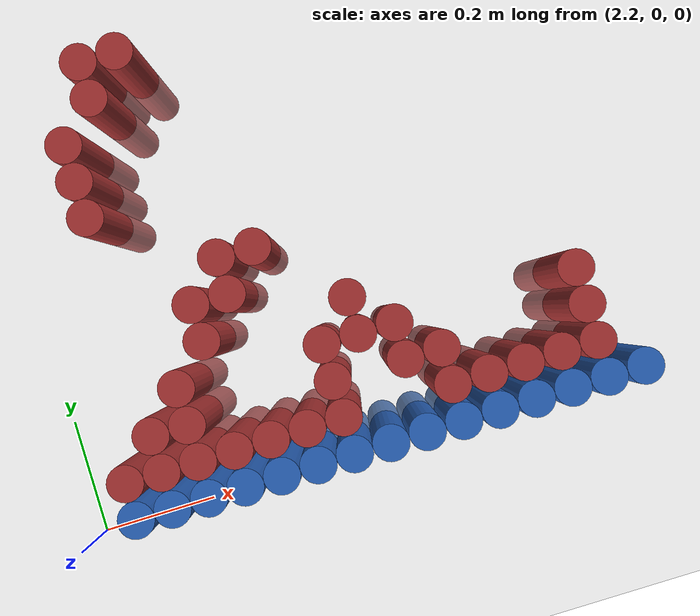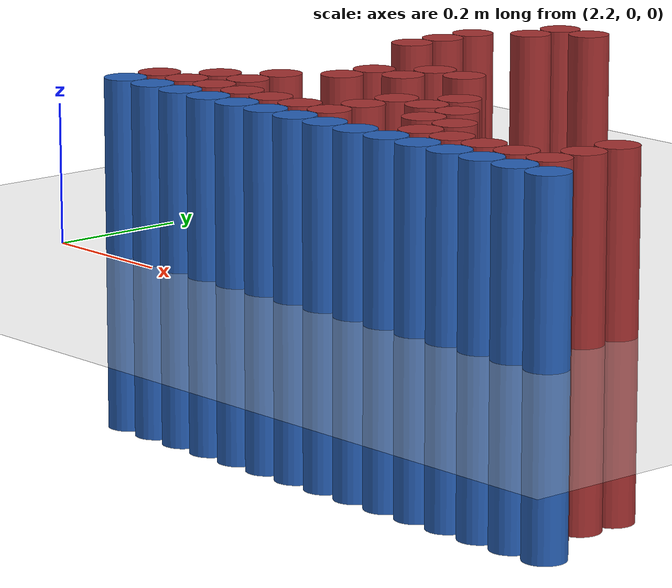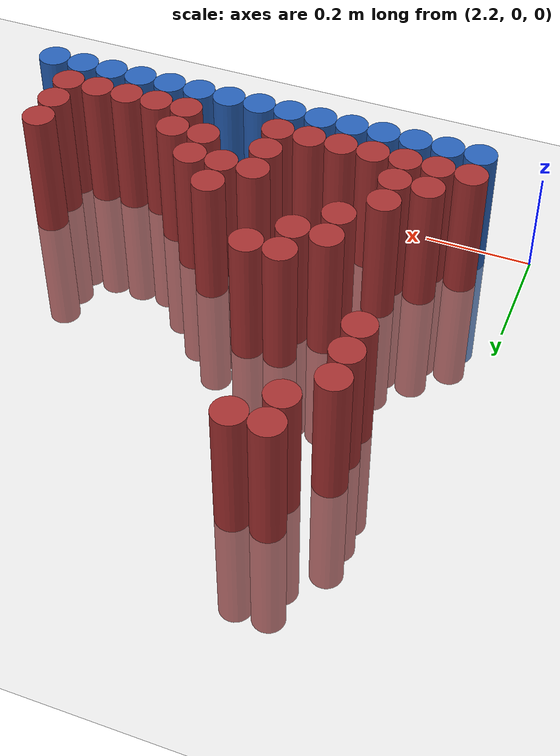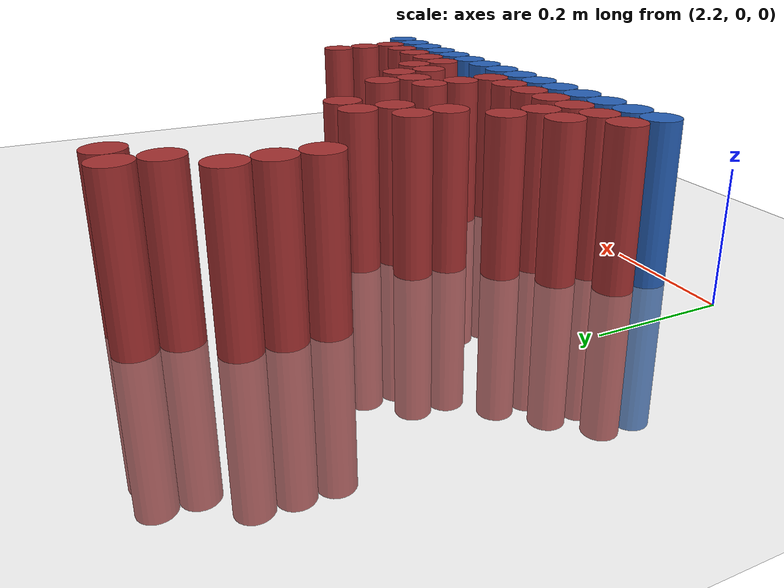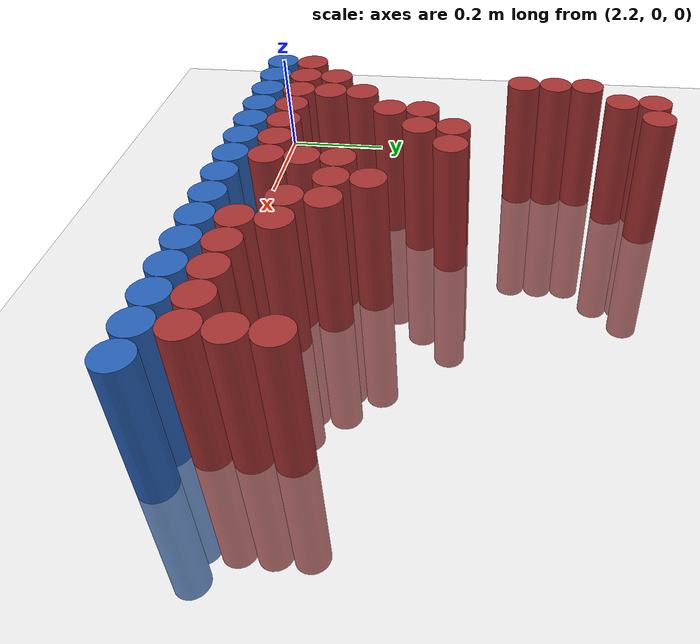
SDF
<sdf version="1.6">
 <world name="default">
  <model name="ground_plane">
   <static>1</static>
   <link name="link">
    <collision name="collision">
     <geometry><plane><normal>0 0 1</normal><size>100 100</size></plane></geometry>
     <surface><friction><ode><mu>100</mu><mu2>50</mu2></ode></friction></surface>
    </collision>
    <visual name="visual">
     <cast_shadows>0</cast_shadows>
     <geometry><plane><normal>0 0 1</normal><size>100 100</size></plane></geometry>
     <material>
      <script><uri>file://media/materials/scripts/gazebo.material</uri><name>Gazebo/Grey</name></script>
     </material>
    </visual>
   </link>
  </model>
  <model name="unit_cylinder_219">
   <static>1</static>
   <pose>2.430000 0.750000 0.000000 0.000000 0.000000 0.000000</pose>
   <link name="link">
    <inertial>
     <mass>1</mass>
     <inertia><ixx>0.145833</ixx><ixy>0</ixy><ixz>0</ixz><iyy>0.145833</iyy><iyz>0</iyz><izz>0.125</izz></inertia>
    </inertial>
    <collision name="collision">
     <geometry><cylinder><radius>0.030000</radius><length>0.5</length></cylinder></geometry>
    </collision>
    <visual name="visual">
     <geometry><cylinder><radius>0.030000</radius><length>0.5</length></cylinder></geometry>
     <material>
      <ambient>0.648000 0.192000 0.192000 1</ambient>
      <diffuse>0.648000 0.192000 0.192000 1</diffuse>
     </material>
     <material>
      <script><name>Gazebo/Grey</name><uri>file://media/materials/scripts/gazebo.material</uri></script>
     </material>
    </visual>
   </link>
  </model>
  <model name="unit_cylinder_220">
   <static>1</static>
   <pose>2.490000 0.750000 0.000000 0.000000 0.000000 0.000000</pose>
   <link name="link">
    <inertial>
     <mass>1</mass>
     <inertia><ixx>0.145833</ixx><ixy>0</ixy><ixz>0</ixz><iyy>0.145833</iyy><iyz>0</iyz><izz>0.125</izz></inertia>
    </inertial>
    <collision name="collision">
     <geometry><cylinder><radius>0.030000</radius><length>0.5</length></cylinder></geometry>
    </collision>
    <visual name="visual">
     <geometry><cylinder><radius>0.030000</radius><length>0.5</length></cylinder></geometry>
     <material>
      <ambient>0.648000 0.192000 0.192000 1</ambient>
      <diffuse>0.648000 0.192000 0.192000 1</diffuse>
     </material>
     <material>
      <script><name>Gazebo/Grey</name><uri>file://media/materials/scripts/gazebo.material</uri></script>
     </material>
    </visual>
   </link>
  </model>
  <model name="unit_cylinder_228">
   <static>1</static>
   <pose>2.430000 0.690000 0.000000 0.000000 0.000000 0.000000</pose>
   <link name="link">
    <inertial>
     <mass>1</mass>
     <inertia><ixx>0.145833</ixx><ixy>0</ixy><ixz>0</ixz><iyy>0.145833</iyy><iyz>0</iyz><izz>0.125</izz></inertia>
    </inertial>
    <collision name="collision">
     <geometry><cylinder><radius>0.030000</radius><length>0.5</length></cylinder></geometry>
    </collision>
    <visual name="visual">
     <geometry><cylinder><radius>0.030000</radius><length>0.5</length></cylinder></geometry>
     <material>
      <ambient>0.648000 0.192000 0.192000 1</ambient>
      <diffuse>0.648000 0.192000 0.192000 1</diffuse>
     </material>
     <material>
      <script><name>Gazebo/Grey</name><uri>file://media/materials/scripts/gazebo.material</uri></script>
     </material>
    </visual>
   </link>
  </model>
  <model name="unit_cylinder_234">
   <static>1</static>
   <pose>2.370000 0.630000 0.000000 0.000000 0.000000 0.000000</pose>
   <link name="link">
    <inertial>
     <mass>1</mass>
     <inertia><ixx>0.145833</ixx><ixy>0</ixy><ixz>0</ixz><iyy>0.145833</iyy><iyz>0</iyz><izz>0.125</izz></inertia>
    </inertial>
    <collision name="collision">
     <geometry><cylinder><radius>0.030000</radius><length>0.5</length></cylinder></geometry>
    </collision>
    <visual name="visual">
     <geometry><cylinder><radius>0.030000</radius><length>0.5</length></cylinder></geometry>
     <material>
      <ambient>0.648000 0.192000 0.192000 1</ambient>
      <diffuse>0.648000 0.192000 0.192000 1</diffuse>
     </material>
     <material>
      <script><name>Gazebo/Grey</name><uri>file://media/materials/scripts/gazebo.material</uri></script>
     </material>
    </visual>
   </link>
  </model>
  <model name="unit_cylinder_238">
   <static>1</static>
   <pose>2.370000 0.570000 0.000000 0.000000 0.000000 0.000000</pose>
   <link name="link">
    <inertial>
     <mass>1</mass>
     <inertia><ixx>0.145833</ixx><ixy>0</ixy><ixz>0</ixz><iyy>0.145833</iyy><iyz>0</iyz><izz>0.125</izz></inertia>
    </inertial>
    <collision name="collision">
     <geometry><cylinder><radius>0.030000</radius><length>0.5</length></cylinder></geometry>
    </collision>
    <visual name="visual">
     <geometry><cylinder><radius>0.030000</radius><length>0.5</length></cylinder></geometry>
     <material>
      <ambient>0.648000 0.192000 0.192000 1</ambient>
      <diffuse>0.648000 0.192000 0.192000 1</diffuse>
     </material>
     <material>
      <script><name>Gazebo/Grey</name><uri>file://media/materials/scripts/gazebo.material</uri></script>
     </material>
    </visual>
   </link>
  </model>
  <model name="unit_cylinder_243">
   <static>1</static>
   <pose>2.370000 0.510000 0.000000 0.000000 0.000000 0.000000</pose>
   <link name="link">
    <inertial>
     <mass>1</mass>
     <inertia><ixx>0.145833</ixx><ixy>0</ixy><ixz>0</ixz><iyy>0.145833</iyy><iyz>0</iyz><izz>0.125</izz></inertia>
    </inertial>
    <collision name="collision">
     <geometry><cylinder><radius>0.030000</radius><length>0.5</length></cylinder></geometry>
    </collision>
    <visual name="visual">
     <geometry><cylinder><radius>0.030000</radius><length>0.5</length></cylinder></geometry>
     <material>
      <ambient>0.648000 0.192000 0.192000 1</ambient>
      <diffuse>0.648000 0.192000 0.192000 1</diffuse>
     </material>
     <material>
      <script><name>Gazebo/Grey</name><uri>file://media/materials/scripts/gazebo.material</uri></script>
     </material>
    </visual>
   </link>
  </model>
  <model name="unit_cylinder_259">
   <static>1</static>
   <pose>2.550000 0.390000 0.000000 0.000000 0.000000 0.000000</pose>
   <link name="link">
    <inertial>
     <mass>1</mass>
     <inertia><ixx>0.145833</ixx><ixy>0</ixy><ixz>0</ixz><iyy>0.145833</iyy><iyz>0</iyz><izz>0.125</izz></inertia>
    </inertial>
    <collision name="collision">
     <geometry><cylinder><radius>0.030000</radius><length>0.5</length></cylinder></geometry>
    </collision>
    <visual name="visual">
     <geometry><cylinder><radius>0.030000</radius><length>0.5</length></cylinder></geometry>
     <material>
      <ambient>0.648000 0.192000 0.192000 1</ambient>
      <diffuse>0.648000 0.192000 0.192000 1</diffuse>
     </material>
     <material>
      <script><name>Gazebo/Grey</name><uri>file://media/materials/scripts/gazebo.material</uri></script>
     </material>
    </visual>
   </link>
  </model>
  <model name="unit_cylinder_260">
   <static>1</static>
   <pose>2.610000 0.390000 0.000000 0.000000 0.000000 0.000000</pose>
   <link name="link">
    <inertial>
     <mass>1</mass>
     <inertia><ixx>0.145833</ixx><ixy>0</ixy><ixz>0</ixz><iyy>0.145833</iyy><iyz>0</iyz><izz>0.125</izz></inertia>
    </inertial>
    <collision name="collision">
     <geometry><cylinder><radius>0.030000</radius><length>0.5</length></cylinder></geometry>
    </collision>
    <visual name="visual">
     <geometry><cylinder><radius>0.030000</radius><length>0.5</length></cylinder></geometry>
     <material>
      <ambient>0.648000 0.192000 0.192000 1</ambient>
      <diffuse>0.648000 0.192000 0.192000 1</diffuse>
     </material>
     <material>
      <script><name>Gazebo/Grey</name><uri>file://media/materials/scripts/gazebo.material</uri></script>
     </material>
    </visual>
   </link>
  </model>
  <model name="unit_cylinder_266">
   <static>1</static>
   <pose>2.490000 0.330000 0.000000 0.000000 0.000000 0.000000</pose>
   <link name="link">
    <inertial>
     <mass>1</mass>
     <inertia><ixx>0.145833</ixx><ixy>0</ixy><ixz>0</ixz><iyy>0.145833</iyy><iyz>0</iyz><izz>0.125</izz></inertia>
    </inertial>
    <collision name="collision">
     <geometry><cylinder><radius>0.030000</radius><length>0.5</length></cylinder></geometry>
    </collision>
    <visual name="visual">
     <geometry><cylinder><radius>0.030000</radius><length>0.5</length></cylinder></geometry>
     <material>
      <ambient>0.648000 0.192000 0.192000 1</ambient>
      <diffuse>0.648000 0.192000 0.192000 1</diffuse>
     </material>
     <material>
      <script><name>Gazebo/Grey</name><uri>file://media/materials/scripts/gazebo.material</uri></script>
     </material>
    </visual>
   </link>
  </model>
  <model name="unit_cylinder_267">
   <static>1</static>
   <pose>2.550000 0.330000 0.000000 0.000000 0.000000 0.000000</pose>
   <link name="link">
    <inertial>
     <mass>1</mass>
     <inertia><ixx>0.145833</ixx><ixy>0</ixy><ixz>0</ixz><iyy>0.145833</iyy><iyz>0</iyz><izz>0.125</izz></inertia>
    </inertial>
    <collision name="collision">
     <geometry><cylinder><radius>0.030000</radius><length>0.5</length></cylinder></geometry>
    </collision>
    <visual name="visual">
     <geometry><cylinder><radius>0.030000</radius><length>0.5</length></cylinder></geometry>
     <material>
      <ambient>0.648000 0.192000 0.192000 1</ambient>
      <diffuse>0.648000 0.192000 0.192000 1</diffuse>
     </material>
     <material>
      <script><name>Gazebo/Grey</name><uri>file://media/materials/scripts/gazebo.material</uri></script>
     </material>
    </visual>
   </link>
  </model>
  <model name="unit_cylinder_274">
   <static>1</static>
   <pose>2.490000 0.270000 0.000000 0.000000 0.000000 0.000000</pose>
   <link name="link">
    <inertial>
     <mass>1</mass>
     <inertia><ixx>0.145833</ixx><ixy>0</ixy><ixz>0</ixz><iyy>0.145833</iyy><iyz>0</iyz><izz>0.125</izz></inertia>
    </inertial>
    <collision name="collision">
     <geometry><cylinder><radius>0.030000</radius><length>0.5</length></cylinder></geometry>
    </collision>
    <visual name="visual">
     <geometry><cylinder><radius>0.030000</radius><length>0.5</length></cylinder></geometry>
     <material>
      <ambient>0.648000 0.192000 0.192000 1</ambient>
      <diffuse>0.648000 0.192000 0.192000 1</diffuse>
     </material>
     <material>
      <script><name>Gazebo/Grey</name><uri>file://media/materials/scripts/gazebo.material</uri></script>
     </material>
    </visual>
   </link>
  </model>
  <model name="unit_cylinder_275">
   <static>1</static>
   <pose>2.730000 0.270000 0.000000 0.000000 0.000000 0.000000</pose>
   <link name="link">
    <inertial>
     <mass>1</mass>
     <inertia><ixx>0.145833</ixx><ixy>0</ixy><ixz>0</ixz><iyy>0.145833</iyy><iyz>0</iyz><izz>0.125</izz></inertia>
    </inertial>
    <collision name="collision">
     <geometry><cylinder><radius>0.030000</radius><length>0.5</length></cylinder></geometry>
    </collision>
    <visual name="visual">
     <geometry><cylinder><radius>0.030000</radius><length>0.5</length></cylinder></geometry>
     <material>
      <ambient>0.648000 0.192000 0.192000 1</ambient>
      <diffuse>0.648000 0.192000 0.192000 1</diffuse>
     </material>
     <material>
      <script><name>Gazebo/Grey</name><uri>file://media/materials/scripts/gazebo.material</uri></script>
     </material>
    </visual>
   </link>
  </model>
  <model name="unit_cylinder_283">
   <static>1</static>
   <pose>2.430000 0.210000 0.000000 0.000000 0.000000 0.000000</pose>
   <link name="link">
    <inertial>
     <mass>1</mass>
     <inertia><ixx>0.145833</ixx><ixy>0</ixy><ixz>0</ixz><iyy>0.145833</iyy><iyz>0</iyz><izz>0.125</izz></inertia>
    </inertial>
    <collision name="collision">
     <geometry><cylinder><radius>0.030000</radius><length>0.5</length></cylinder></geometry>
    </collision>
    <visual name="visual">
     <geometry><cylinder><radius>0.030000</radius><length>0.5</length></cylinder></geometry>
     <material>
      <ambient>0.648000 0.192000 0.192000 1</ambient>
      <diffuse>0.648000 0.192000 0.192000 1</diffuse>
     </material>
     <material>
      <script><name>Gazebo/Grey</name><uri>file://media/materials/scripts/gazebo.material</uri></script>
     </material>
    </visual>
   </link>
  </model>
  <model name="unit_cylinder_284">
   <static>1</static>
   <pose>2.670000 0.210000 0.000000 0.000000 0.000000 0.000000</pose>
   <link name="link">
    <inertial>
     <mass>1</mass>
     <inertia><ixx>0.145833</ixx><ixy>0</ixy><ixz>0</ixz><iyy>0.145833</iyy><iyz>0</iyz><izz>0.125</izz></inertia>
    </inertial>
    <collision name="collision">
     <geometry><cylinder><radius>0.030000</radius><length>0.5</length></cylinder></geometry>
    </collision>
    <visual name="visual">
     <geometry><cylinder><radius>0.030000</radius><length>0.5</length></cylinder></geometry>
     <material>
      <ambient>0.648000 0.192000 0.192000 1</ambient>
      <diffuse>0.648000 0.192000 0.192000 1</diffuse>
     </material>
     <material>
      <script><name>Gazebo/Grey</name><uri>file://media/materials/scripts/gazebo.material</uri></script>
     </material>
    </visual>
   </link>
  </model>
  <model name="unit_cylinder_285">
   <static>1</static>
   <pose>2.730000 0.210000 0.000000 0.000000 0.000000 0.000000</pose>
   <link name="link">
    <inertial>
     <mass>1</mass>
     <inertia><ixx>0.145833</ixx><ixy>0</ixy><ixz>0</ixz><iyy>0.145833</iyy><iyz>0</iyz><izz>0.125</izz></inertia>
    </inertial>
    <collision name="collision">
     <geometry><cylinder><radius>0.030000</radius><length>0.5</length></cylinder></geometry>
    </collision>
    <visual name="visual">
     <geometry><cylinder><radius>0.030000</radius><length>0.5</length></cylinder></geometry>
     <material>
      <ambient>0.648000 0.192000 0.192000 1</ambient>
      <diffuse>0.648000 0.192000 0.192000 1</diffuse>
     </material>
     <material>
      <script><name>Gazebo/Grey</name><uri>file://media/materials/scripts/gazebo.material</uri></script>
     </material>
    </visual>
   </link>
  </model>
  <model name="unit_cylinder_286">
   <static>1</static>
   <pose>2.790000 0.210000 0.000000 0.000000 0.000000 0.000000</pose>
   <link name="link">
    <inertial>
     <mass>1</mass>
     <inertia><ixx>0.145833</ixx><ixy>0</ixy><ixz>0</ixz><iyy>0.145833</iyy><iyz>0</iyz><izz>0.125</izz></inertia>
    </inertial>
    <collision name="collision">
     <geometry><cylinder><radius>0.030000</radius><length>0.5</length></cylinder></geometry>
    </collision>
    <visual name="visual">
     <geometry><cylinder><radius>0.030000</radius><length>0.5</length></cylinder></geometry>
     <material>
      <ambient>0.648000 0.192000 0.192000 1</ambient>
      <diffuse>0.648000 0.192000 0.192000 1</diffuse>
     </material>
     <material>
      <script><name>Gazebo/Grey</name><uri>file://media/materials/scripts/gazebo.material</uri></script>
     </material>
    </visual>
   </link>
  </model>
  <model name="unit_cylinder_287">
   <static>1</static>
   <pose>3.090000 0.210000 0.000000 0.000000 0.000000 0.000000</pose>
   <link name="link">
    <inertial>
     <mass>1</mass>
     <inertia><ixx>0.145833</ixx><ixy>0</ixy><ixz>0</ixz><iyy>0.145833</iyy><iyz>0</iyz><izz>0.125</izz></inertia>
    </inertial>
    <collision name="collision">
     <geometry><cylinder><radius>0.030000</radius><length>0.5</length></cylinder></geometry>
    </collision>
    <visual name="visual">
     <geometry><cylinder><radius>0.030000</radius><length>0.5</length></cylinder></geometry>
     <material>
      <ambient>0.648000 0.192000 0.192000 1</ambient>
      <diffuse>0.648000 0.192000 0.192000 1</diffuse>
     </material>
     <material>
      <script><name>Gazebo/Grey</name><uri>file://media/materials/scripts/gazebo.material</uri></script>
     </material>
    </visual>
   </link>
  </model>
  <model name="unit_cylinder_292">
   <static>1</static>
   <pose>2.370000 0.150000 0.000000 0.000000 0.000000 0.000000</pose>
   <link name="link">
    <inertial>
     <mass>1</mass>
     <inertia><ixx>0.145833</ixx><ixy>0</ixy><ixz>0</ixz><iyy>0.145833</iyy><iyz>0</iyz><izz>0.125</izz></inertia>
    </inertial>
    <collision name="collision">
     <geometry><cylinder><radius>0.030000</radius><length>0.5</length></cylinder></geometry>
    </collision>
    <visual name="visual">
     <geometry><cylinder><radius>0.030000</radius><length>0.5</length></cylinder></geometry>
     <material>
      <ambient>0.648000 0.192000 0.192000 1</ambient>
      <diffuse>0.648000 0.192000 0.192000 1</diffuse>
     </material>
     <material>
      <script><name>Gazebo/Grey</name><uri>file://media/materials/scripts/gazebo.material</uri></script>
     </material>
    </visual>
   </link>
  </model>
  <model name="unit_cylinder_293">
   <static>1</static>
   <pose>2.430000 0.150000 0.000000 0.000000 0.000000 0.000000</pose>
   <link name="link">
    <inertial>
     <mass>1</mass>
     <inertia><ixx>0.145833</ixx><ixy>0</ixy><ixz>0</ixz><iyy>0.145833</iyy><iyz>0</iyz><izz>0.125</izz></inertia>
    </inertial>
    <collision name="collision">
     <geometry><cylinder><radius>0.030000</radius><length>0.5</length></cylinder></geometry>
    </collision>
    <visual name="visual">
     <geometry><cylinder><radius>0.030000</radius><length>0.5</length></cylinder></geometry>
     <material>
      <ambient>0.648000 0.192000 0.192000 1</ambient>
      <diffuse>0.648000 0.192000 0.192000 1</diffuse>
     </material>
     <material>
      <script><name>Gazebo/Grey</name><uri>file://media/materials/scripts/gazebo.material</uri></script>
     </material>
    </visual>
   </link>
  </model>
  <model name="unit_cylinder_294">
   <static>1</static>
   <pose>2.670000 0.150000 0.000000 0.000000 0.000000 0.000000</pose>
   <link name="link">
    <inertial>
     <mass>1</mass>
     <inertia><ixx>0.145833</ixx><ixy>0</ixy><ixz>0</ixz><iyy>0.145833</iyy><iyz>0</iyz><izz>0.125</izz></inertia>
    </inertial>
    <collision name="collision">
     <geometry><cylinder><radius>0.030000</radius><length>0.5</length></cylinder></geometry>
    </collision>
    <visual name="visual">
     <geometry><cylinder><radius>0.030000</radius><length>0.5</length></cylinder></geometry>
     <material>
      <ambient>0.648000 0.192000 0.192000 1</ambient>
      <diffuse>0.648000 0.192000 0.192000 1</diffuse>
     </material>
     <material>
      <script><name>Gazebo/Grey</name><uri>file://media/materials/scripts/gazebo.material</uri></script>
     </material>
    </visual>
   </link>
  </model>
  <model name="unit_cylinder_295">
   <static>1</static>
   <pose>2.790000 0.150000 0.000000 0.000000 0.000000 0.000000</pose>
   <link name="link">
    <inertial>
     <mass>1</mass>
     <inertia><ixx>0.145833</ixx><ixy>0</ixy><ixz>0</ixz><iyy>0.145833</iyy><iyz>0</iyz><izz>0.125</izz></inertia>
    </inertial>
    <collision name="collision">
     <geometry><cylinder><radius>0.030000</radius><length>0.5</length></cylinder></geometry>
    </collision>
    <visual name="visual">
     <geometry><cylinder><radius>0.030000</radius><length>0.5</length></cylinder></geometry>
     <material>
      <ambient>0.648000 0.192000 0.192000 1</ambient>
      <diffuse>0.648000 0.192000 0.192000 1</diffuse>
     </material>
     <material>
      <script><name>Gazebo/Grey</name><uri>file://media/materials/scripts/gazebo.material</uri></script>
     </material>
    </visual>
   </link>
  </model>
  <model name="unit_cylinder_296">
   <static>1</static>
   <pose>2.850000 0.150000 0.000000 0.000000 0.000000 0.000000</pose>
   <link name="link">
    <inertial>
     <mass>1</mass>
     <inertia><ixx>0.145833</ixx><ixy>0</ixy><ixz>0</ixz><iyy>0.145833</iyy><iyz>0</iyz><izz>0.125</izz></inertia>
    </inertial>
    <collision name="collision">
     <geometry><cylinder><radius>0.030000</radius><length>0.5</length></cylinder></geometry>
    </collision>
    <visual name="visual">
     <geometry><cylinder><radius>0.030000</radius><length>0.5</length></cylinder></geometry>
     <material>
      <ambient>0.648000 0.192000 0.192000 1</ambient>
      <diffuse>0.648000 0.192000 0.192000 1</diffuse>
     </material>
     <material>
      <script><name>Gazebo/Grey</name><uri>file://media/materials/scripts/gazebo.material</uri></script>
     </material>
    </visual>
   </link>
  </model>
  <model name="unit_cylinder_297">
   <static>1</static>
   <pose>3.090000 0.150000 0.000000 0.000000 0.000000 0.000000</pose>
   <link name="link">
    <inertial>
     <mass>1</mass>
     <inertia><ixx>0.145833</ixx><ixy>0</ixy><ixz>0</ixz><iyy>0.145833</iyy><iyz>0</iyz><izz>0.125</izz></inertia>
    </inertial>
    <collision name="collision">
     <geometry><cylinder><radius>0.030000</radius><length>0.5</length></cylinder></geometry>
    </collision>
    <visual name="visual">
     <geometry><cylinder><radius>0.030000</radius><length>0.5</length></cylinder></geometry>
     <material>
      <ambient>0.648000 0.192000 0.192000 1</ambient>
      <diffuse>0.648000 0.192000 0.192000 1</diffuse>
     </material>
     <material>
      <script><name>Gazebo/Grey</name><uri>file://media/materials/scripts/gazebo.material</uri></script>
     </material>
    </visual>
   </link>
  </model>
  <model name="unit_cylinder_303">
   <static>1</static>
   <pose>2.310000 0.090000 0.000000 0.000000 0.000000 0.000000</pose>
   <link name="link">
    <inertial>
     <mass>1</mass>
     <inertia><ixx>0.145833</ixx><ixy>0</ixy><ixz>0</ixz><iyy>0.145833</iyy><iyz>0</iyz><izz>0.125</izz></inertia>
    </inertial>
    <collision name="collision">
     <geometry><cylinder><radius>0.030000</radius><length>0.5</length></cylinder></geometry>
    </collision>
    <visual name="visual">
     <geometry><cylinder><radius>0.030000</radius><length>0.5</length></cylinder></geometry>
     <material>
      <ambient>0.648000 0.192000 0.192000 1</ambient>
      <diffuse>0.648000 0.192000 0.192000 1</diffuse>
     </material>
     <material>
      <script><name>Gazebo/Grey</name><uri>file://media/materials/scripts/gazebo.material</uri></script>
     </material>
    </visual>
   </link>
  </model>
  <model name="unit_cylinder_304">
   <static>1</static>
   <pose>2.370000 0.090000 0.000000 0.000000 0.000000 0.000000</pose>
   <link name="link">
    <inertial>
     <mass>1</mass>
     <inertia><ixx>0.145833</ixx><ixy>0</ixy><ixz>0</ixz><iyy>0.145833</iyy><iyz>0</iyz><izz>0.125</izz></inertia>
    </inertial>
    <collision name="collision">
     <geometry><cylinder><radius>0.030000</radius><length>0.5</length></cylinder></geometry>
    </collision>
    <visual name="visual">
     <geometry><cylinder><radius>0.030000</radius><length>0.5</length></cylinder></geometry>
     <material>
      <ambient>0.648000 0.192000 0.192000 1</ambient>
      <diffuse>0.648000 0.192000 0.192000 1</diffuse>
     </material>
     <material>
      <script><name>Gazebo/Grey</name><uri>file://media/materials/scripts/gazebo.material</uri></script>
     </material>
    </visual>
   </link>
  </model>
  <model name="unit_cylinder_305">
   <static>1</static>
   <pose>2.430000 0.090000 0.000000 0.000000 0.000000 0.000000</pose>
   <link name="link">
    <inertial>
     <mass>1</mass>
     <inertia><ixx>0.145833</ixx><ixy>0</ixy><ixz>0</ixz><iyy>0.145833</iyy><iyz>0</iyz><izz>0.125</izz></inertia>
    </inertial>
    <collision name="collision">
     <geometry><cylinder><radius>0.030000</radius><length>0.5</length></cylinder></geometry>
    </collision>
    <visual name="visual">
     <geometry><cylinder><radius>0.030000</radius><length>0.5</length></cylinder></geometry>
     <material>
      <ambient>0.648000 0.192000 0.192000 1</ambient>
      <diffuse>0.648000 0.192000 0.192000 1</diffuse>
     </material>
     <material>
      <script><name>Gazebo/Grey</name><uri>file://media/materials/scripts/gazebo.material</uri></script>
     </material>
    </visual>
   </link>
  </model>
  <model name="unit_cylinder_306">
   <static>1</static>
   <pose>2.490000 0.090000 0.000000 0.000000 0.000000 0.000000</pose>
   <link name="link">
    <inertial>
     <mass>1</mass>
     <inertia><ixx>0.145833</ixx><ixy>0</ixy><ixz>0</ixz><iyy>0.145833</iyy><iyz>0</iyz><izz>0.125</izz></inertia>
    </inertial>
    <collision name="collision">
     <geometry><cylinder><radius>0.030000</radius><length>0.5</length></cylinder></geometry>
    </collision>
    <visual name="visual">
     <geometry><cylinder><radius>0.030000</radius><length>0.5</length></cylinder></geometry>
     <material>
      <ambient>0.648000 0.192000 0.192000 1</ambient>
      <diffuse>0.648000 0.192000 0.192000 1</diffuse>
     </material>
     <material>
      <script><name>Gazebo/Grey</name><uri>file://media/materials/scripts/gazebo.material</uri></script>
     </material>
    </visual>
   </link>
  </model>
  <model name="unit_cylinder_307">
   <static>1</static>
   <pose>2.550000 0.090000 0.000000 0.000000 0.000000 0.000000</pose>
   <link name="link">
    <inertial>
     <mass>1</mass>
     <inertia><ixx>0.145833</ixx><ixy>0</ixy><ixz>0</ixz><iyy>0.145833</iyy><iyz>0</iyz><izz>0.125</izz></inertia>
    </inertial>
    <collision name="collision">
     <geometry><cylinder><radius>0.030000</radius><length>0.5</length></cylinder></geometry>
    </collision>
    <visual name="visual">
     <geometry><cylinder><radius>0.030000</radius><length>0.5</length></cylinder></geometry>
     <material>
      <ambient>0.648000 0.192000 0.192000 1</ambient>
      <diffuse>0.648000 0.192000 0.192000 1</diffuse>
     </material>
     <material>
      <script><name>Gazebo/Grey</name><uri>file://media/materials/scripts/gazebo.material</uri></script>
     </material>
    </visual>
   </link>
  </model>
  <model name="unit_cylinder_308">
   <static>1</static>
   <pose>2.610000 0.090000 0.000000 0.000000 0.000000 0.000000</pose>
   <link name="link">
    <inertial>
     <mass>1</mass>
     <inertia><ixx>0.145833</ixx><ixy>0</ixy><ixz>0</ixz><iyy>0.145833</iyy><iyz>0</iyz><izz>0.125</izz></inertia>
    </inertial>
    <collision name="collision">
     <geometry><cylinder><radius>0.030000</radius><length>0.5</length></cylinder></geometry>
    </collision>
    <visual name="visual">
     <geometry><cylinder><radius>0.030000</radius><length>0.5</length></cylinder></geometry>
     <material>
      <ambient>0.648000 0.192000 0.192000 1</ambient>
      <diffuse>0.648000 0.192000 0.192000 1</diffuse>
     </material>
     <material>
      <script><name>Gazebo/Grey</name><uri>file://media/materials/scripts/gazebo.material</uri></script>
     </material>
    </visual>
   </link>
  </model>
  <model name="unit_cylinder_309">
   <static>1</static>
   <pose>2.670000 0.090000 0.000000 0.000000 0.000000 0.000000</pose>
   <link name="link">
    <inertial>
     <mass>1</mass>
     <inertia><ixx>0.145833</ixx><ixy>0</ixy><ixz>0</ixz><iyy>0.145833</iyy><iyz>0</iyz><izz>0.125</izz></inertia>
    </inertial>
    <collision name="collision">
     <geometry><cylinder><radius>0.030000</radius><length>0.5</length></cylinder></geometry>
    </collision>
    <visual name="visual">
     <geometry><cylinder><radius>0.030000</radius><length>0.5</length></cylinder></geometry>
     <material>
      <ambient>0.648000 0.192000 0.192000 1</ambient>
      <diffuse>0.648000 0.192000 0.192000 1</diffuse>
     </material>
     <material>
      <script><name>Gazebo/Grey</name><uri>file://media/materials/scripts/gazebo.material</uri></script>
     </material>
    </visual>
   </link>
  </model>
  <model name="unit_cylinder_310">
   <static>1</static>
   <pose>2.850000 0.090000 0.000000 0.000000 0.000000 0.000000</pose>
   <link name="link">
    <inertial>
     <mass>1</mass>
     <inertia><ixx>0.145833</ixx><ixy>0</ixy><ixz>0</ixz><iyy>0.145833</iyy><iyz>0</iyz><izz>0.125</izz></inertia>
    </inertial>
    <collision name="collision">
     <geometry><cylinder><radius>0.030000</radius><length>0.5</length></cylinder></geometry>
    </collision>
    <visual name="visual">
     <geometry><cylinder><radius>0.030000</radius><length>0.5</length></cylinder></geometry>
     <material>
      <ambient>0.648000 0.192000 0.192000 1</ambient>
      <diffuse>0.648000 0.192000 0.192000 1</diffuse>
     </material>
     <material>
      <script><name>Gazebo/Grey</name><uri>file://media/materials/scripts/gazebo.material</uri></script>
     </material>
    </visual>
   </link>
  </model>
  <model name="unit_cylinder_311">
   <static>1</static>
   <pose>2.910000 0.090000 0.000000 0.000000 0.000000 0.000000</pose>
   <link name="link">
    <inertial>
     <mass>1</mass>
     <inertia><ixx>0.145833</ixx><ixy>0</ixy><ixz>0</ixz><iyy>0.145833</iyy><iyz>0</iyz><izz>0.125</izz></inertia>
    </inertial>
    <collision name="collision">
     <geometry><cylinder><radius>0.030000</radius><length>0.5</length></cylinder></geometry>
    </collision>
    <visual name="visual">
     <geometry><cylinder><radius>0.030000</radius><length>0.5</length></cylinder></geometry>
     <material>
      <ambient>0.648000 0.192000 0.192000 1</ambient>
      <diffuse>0.648000 0.192000 0.192000 1</diffuse>
     </material>
     <material>
      <script><name>Gazebo/Grey</name><uri>file://media/materials/scripts/gazebo.material</uri></script>
     </material>
    </visual>
   </link>
  </model>
  <model name="unit_cylinder_312">
   <static>1</static>
   <pose>2.970000 0.090000 0.000000 0.000000 0.000000 0.000000</pose>
   <link name="link">
    <inertial>
     <mass>1</mass>
     <inertia><ixx>0.145833</ixx><ixy>0</ixy><ixz>0</ixz><iyy>0.145833</iyy><iyz>0</iyz><izz>0.125</izz></inertia>
    </inertial>
    <collision name="collision">
     <geometry><cylinder><radius>0.030000</radius><length>0.5</length></cylinder></geometry>
    </collision>
    <visual name="visual">
     <geometry><cylinder><radius>0.030000</radius><length>0.5</length></cylinder></geometry>
     <material>
      <ambient>0.648000 0.192000 0.192000 1</ambient>
      <diffuse>0.648000 0.192000 0.192000 1</diffuse>
     </material>
     <material>
      <script><name>Gazebo/Grey</name><uri>file://media/materials/scripts/gazebo.material</uri></script>
     </material>
    </visual>
   </link>
  </model>
  <model name="unit_cylinder_313">
   <static>1</static>
   <pose>3.030000 0.090000 0.000000 0.000000 0.000000 0.000000</pose>
   <link name="link">
    <inertial>
     <mass>1</mass>
     <inertia><ixx>0.145833</ixx><ixy>0</ixy><ixz>0</ixz><iyy>0.145833</iyy><iyz>0</iyz><izz>0.125</izz></inertia>
    </inertial>
    <collision name="collision">
     <geometry><cylinder><radius>0.030000</radius><length>0.5</length></cylinder></geometry>
    </collision>
    <visual name="visual">
     <geometry><cylinder><radius>0.030000</radius><length>0.5</length></cylinder></geometry>
     <material>
      <ambient>0.648000 0.192000 0.192000 1</ambient>
      <diffuse>0.648000 0.192000 0.192000 1</diffuse>
     </material>
     <material>
      <script><name>Gazebo/Grey</name><uri>file://media/materials/scripts/gazebo.material</uri></script>
     </material>
    </visual>
   </link>
  </model>
  <model name="unit_cylinder_314">
   <static>1</static>
   <pose>3.090000 0.090000 0.000000 0.000000 0.000000 0.000000</pose>
   <link name="link">
    <inertial>
     <mass>1</mass>
     <inertia><ixx>0.145833</ixx><ixy>0</ixy><ixz>0</ixz><iyy>0.145833</iyy><iyz>0</iyz><izz>0.125</izz></inertia>
    </inertial>
    <collision name="collision">
     <geometry><cylinder><radius>0.030000</radius><length>0.5</length></cylinder></geometry>
    </collision>
    <visual name="visual">
     <geometry><cylinder><radius>0.030000</radius><length>0.5</length></cylinder></geometry>
     <material>
      <ambient>0.648000 0.192000 0.192000 1</ambient>
      <diffuse>0.648000 0.192000 0.192000 1</diffuse>
     </material>
     <material>
      <script><name>Gazebo/Grey</name><uri>file://media/materials/scripts/gazebo.material</uri></script>
     </material>
    </visual>
   </link>
  </model>
  <model name="unit_cylinder_325">
   <static>1</static>
   <pose>2.310000 0.030000 0.000000 0.000000 0.000000 0.000000</pose>
   <link name="link">
    <inertial>
     <mass>1</mass>
     <inertia><ixx>0.145833</ixx><ixy>0</ixy><ixz>0</ixz><iyy>0.145833</iyy><iyz>0</iyz><izz>0.125</izz></inertia>
    </inertial>
    <collision name="collision">
     <geometry><cylinder><radius>0.030000</radius><length>0.5</length></cylinder></geometry>
    </collision>
    <visual name="visual">
     <geometry><cylinder><radius>0.030000</radius><length>0.5</length></cylinder></geometry>
     <material>
      <ambient>0.152000 0.379000 0.720000 1</ambient>
      <diffuse>0.152000 0.379000 0.720000 1</diffuse>
     </material>
     <material>
      <script><name>Gazebo/Grey</name><uri>file://media/materials/scripts/gazebo.material</uri></script>
     </material>
    </visual>
   </link>
  </model>
  <model name="unit_cylinder_326">
   <static>1</static>
   <pose>2.370000 0.030000 0.000000 0.000000 0.000000 0.000000</pose>
   <link name="link">
    <inertial>
     <mass>1</mass>
     <inertia><ixx>0.145833</ixx><ixy>0</ixy><ixz>0</ixz><iyy>0.145833</iyy><iyz>0</iyz><izz>0.125</izz></inertia>
    </inertial>
    <collision name="collision">
     <geometry><cylinder><radius>0.030000</radius><length>0.5</length></cylinder></geometry>
    </collision>
    <visual name="visual">
     <geometry><cylinder><radius>0.030000</radius><length>0.5</length></cylinder></geometry>
     <material>
      <ambient>0.152000 0.379000 0.720000 1</ambient>
      <diffuse>0.152000 0.379000 0.720000 1</diffuse>
     </material>
     <material>
      <script><name>Gazebo/Grey</name><uri>file://media/materials/scripts/gazebo.material</uri></script>
     </material>
    </visual>
   </link>
  </model>
  <model name="unit_cylinder_327">
   <static>1</static>
   <pose>2.430000 0.030000 0.000000 0.000000 0.000000 0.000000</pose>
   <link name="link">
    <inertial>
     <mass>1</mass>
     <inertia><ixx>0.145833</ixx><ixy>0</ixy><ixz>0</ixz><iyy>0.145833</iyy><iyz>0</iyz><izz>0.125</izz></inertia>
    </inertial>
    <collision name="collision">
     <geometry><cylinder><radius>0.030000</radius><length>0.5</length></cylinder></geometry>
    </collision>
    <visual name="visual">
     <geometry><cylinder><radius>0.030000</radius><length>0.5</length></cylinder></geometry>
     <material>
      <ambient>0.152000 0.379000 0.720000 1</ambient>
      <diffuse>0.152000 0.379000 0.720000 1</diffuse>
     </material>
     <material>
      <script><name>Gazebo/Grey</name><uri>file://media/materials/scripts/gazebo.material</uri></script>
     </material>
    </visual>
   </link>
  </model>
  <model name="unit_cylinder_328">
   <static>1</static>
   <pose>2.490000 0.030000 0.000000 0.000000 0.000000 0.000000</pose>
   <link name="link">
    <inertial>
     <mass>1</mass>
     <inertia><ixx>0.145833</ixx><ixy>0</ixy><ixz>0</ixz><iyy>0.145833</iyy><iyz>0</iyz><izz>0.125</izz></inertia>
    </inertial>
    <collision name="collision">
     <geometry><cylinder><radius>0.030000</radius><length>0.5</length></cylinder></geometry>
    </collision>
    <visual name="visual">
     <geometry><cylinder><radius>0.030000</radius><length>0.5</length></cylinder></geometry>
     <material>
      <ambient>0.152000 0.379000 0.720000 1</ambient>
      <diffuse>0.152000 0.379000 0.720000 1</diffuse>
     </material>
     <material>
      <script><name>Gazebo/Grey</name><uri>file://media/materials/scripts/gazebo.material</uri></script>
     </material>
    </visual>
   </link>
  </model>
  <model name="unit_cylinder_329">
   <static>1</static>
   <pose>2.550000 0.030000 0.000000 0.000000 0.000000 0.000000</pose>
   <link name="link">
    <inertial>
     <mass>1</mass>
     <inertia><ixx>0.145833</ixx><ixy>0</ixy><ixz>0</ixz><iyy>0.145833</iyy><iyz>0</iyz><izz>0.125</izz></inertia>
    </inertial>
    <collision name="collision">
     <geometry><cylinder><radius>0.030000</radius><length>0.5</length></cylinder></geometry>
    </collision>
    <visual name="visual">
     <geometry><cylinder><radius>0.030000</radius><length>0.5</length></cylinder></geometry>
     <material>
      <ambient>0.152000 0.379000 0.720000 1</ambient>
      <diffuse>0.152000 0.379000 0.720000 1</diffuse>
     </material>
     <material>
      <script><name>Gazebo/Grey</name><uri>file://media/materials/scripts/gazebo.material</uri></script>
     </material>
    </visual>
   </link>
  </model>
  <model name="unit_cylinder_330">
   <static>1</static>
   <pose>2.610000 0.030000 0.000000 0.000000 0.000000 0.000000</pose>
   <link name="link">
    <inertial>
     <mass>1</mass>
     <inertia><ixx>0.145833</ixx><ixy>0</ixy><ixz>0</ixz><iyy>0.145833</iyy><iyz>0</iyz><izz>0.125</izz></inertia>
    </inertial>
    <collision name="collision">
     <geometry><cylinder><radius>0.030000</radius><length>0.5</length></cylinder></geometry>
    </collision>
    <visual name="visual">
     <geometry><cylinder><radius>0.030000</radius><length>0.5</length></cylinder></geometry>
     <material>
      <ambient>0.152000 0.379000 0.720000 1</ambient>
      <diffuse>0.152000 0.379000 0.720000 1</diffuse>
     </material>
     <material>
      <script><name>Gazebo/Grey</name><uri>file://media/materials/scripts/gazebo.material</uri></script>
     </material>
    </visual>
   </link>
  </model>
  <model name="unit_cylinder_331">
   <static>1</static>
   <pose>2.670000 0.030000 0.000000 0.000000 0.000000 0.000000</pose>
   <link name="link">
    <inertial>
     <mass>1</mass>
     <inertia><ixx>0.145833</ixx><ixy>0</ixy><ixz>0</ixz><iyy>0.145833</iyy><iyz>0</iyz><izz>0.125</izz></inertia>
    </inertial>
    <collision name="collision">
     <geometry><cylinder><radius>0.030000</radius><length>0.5</length></cylinder></geometry>
    </collision>
    <visual name="visual">
     <geometry><cylinder><radius>0.030000</radius><length>0.5</length></cylinder></geometry>
     <material>
      <ambient>0.152000 0.379000 0.720000 1</ambient>
      <diffuse>0.152000 0.379000 0.720000 1</diffuse>
     </material>
     <material>
      <script><name>Gazebo/Grey</name><uri>file://media/materials/scripts/gazebo.material</uri></script>
     </material>
    </visual>
   </link>
  </model>
  <model name="unit_cylinder_332">
   <static>1</static>
   <pose>2.730000 0.030000 0.000000 0.000000 0.000000 0.000000</pose>
   <link name="link">
    <inertial>
     <mass>1</mass>
     <inertia><ixx>0.145833</ixx><ixy>0</ixy><ixz>0</ixz><iyy>0.145833</iyy><iyz>0</iyz><izz>0.125</izz></inertia>
    </inertial>
    <collision name="collision">
     <geometry><cylinder><radius>0.030000</radius><length>0.5</length></cylinder></geometry>
    </collision>
    <visual name="visual">
     <geometry><cylinder><radius>0.030000</radius><length>0.5</length></cylinder></geometry>
     <material>
      <ambient>0.152000 0.379000 0.720000 1</ambient>
      <diffuse>0.152000 0.379000 0.720000 1</diffuse>
     </material>
     <material>
      <script><name>Gazebo/Grey</name><uri>file://media/materials/scripts/gazebo.material</uri></script>
     </material>
    </visual>
   </link>
  </model>
  <model name="unit_cylinder_333">
   <static>1</static>
   <pose>2.790000 0.030000 0.000000 0.000000 0.000000 0.000000</pose>
   <link name="link">
    <inertial>
     <mass>1</mass>
     <inertia><ixx>0.145833</ixx><ixy>0</ixy><ixz>0</ixz><iyy>0.145833</iyy><iyz>0</iyz><izz>0.125</izz></inertia>
    </inertial>
    <collision name="collision">
     <geometry><cylinder><radius>0.030000</radius><length>0.5</length></cylinder></geometry>
    </collision>
    <visual name="visual">
     <geometry><cylinder><radius>0.030000</radius><length>0.5</length></cylinder></geometry>
     <material>
      <ambient>0.152000 0.379000 0.720000 1</ambient>
      <diffuse>0.152000 0.379000 0.720000 1</diffuse>
     </material>
     <material>
      <script><name>Gazebo/Grey</name><uri>file://media/materials/scripts/gazebo.material</uri></script>
     </material>
    </visual>
   </link>
  </model>
  <model name="unit_cylinder_334">
   <static>1</static>
   <pose>2.850000 0.030000 0.000000 0.000000 0.000000 0.000000</pose>
   <link name="link">
    <inertial>
     <mass>1</mass>
     <inertia><ixx>0.145833</ixx><ixy>0</ixy><ixz>0</ixz><iyy>0.145833</iyy><iyz>0</iyz><izz>0.125</izz></inertia>
    </inertial>
    <collision name="collision">
     <geometry><cylinder><radius>0.030000</radius><length>0.5</length></cylinder></geometry>
    </collision>
    <visual name="visual">
     <geometry><cylinder><radius>0.030000</radius><length>0.5</length></cylinder></geometry>
     <material>
      <ambient>0.152000 0.379000 0.720000 1</ambient>
      <diffuse>0.152000 0.379000 0.720000 1</diffuse>
     </material>
     <material>
      <script><name>Gazebo/Grey</name><uri>file://media/materials/scripts/gazebo.material</uri></script>
     </material>
    </visual>
   </link>
  </model>
  <model name="unit_cylinder_335">
   <static>1</static>
   <pose>2.910000 0.030000 0.000000 0.000000 0.000000 0.000000</pose>
   <link name="link">
    <inertial>
     <mass>1</mass>
     <inertia><ixx>0.145833</ixx><ixy>0</ixy><ixz>0</ixz><iyy>0.145833</iyy><iyz>0</iyz><izz>0.125</izz></inertia>
    </inertial>
    <collision name="collision">
     <geometry><cylinder><radius>0.030000</radius><length>0.5</length></cylinder></geometry>
    </collision>
    <visual name="visual">
     <geometry><cylinder><radius>0.030000</radius><length>0.5</length></cylinder></geometry>
     <material>
      <ambient>0.152000 0.379000 0.720000 1</ambient>
      <diffuse>0.152000 0.379000 0.720000 1</diffuse>
     </material>
     <material>
      <script><name>Gazebo/Grey</name><uri>file://media/materials/scripts/gazebo.material</uri></script>
     </material>
    </visual>
   </link>
  </model>
  <model name="unit_cylinder_336">
   <static>1</static>
   <pose>2.970000 0.030000 0.000000 0.000000 0.000000 0.000000</pose>
   <link name="link">
    <inertial>
     <mass>1</mass>
     <inertia><ixx>0.145833</ixx><ixy>0</ixy><ixz>0</ixz><iyy>0.145833</iyy><iyz>0</iyz><izz>0.125</izz></inertia>
    </inertial>
    <collision name="collision">
     <geometry><cylinder><radius>0.030000</radius><length>0.5</length></cylinder></geometry>
    </collision>
    <visual name="visual">
     <geometry><cylinder><radius>0.030000</radius><length>0.5</length></cylinder></geometry>
     <material>
      <ambient>0.152000 0.379000 0.720000 1</ambient>
      <diffuse>0.152000 0.379000 0.720000 1</diffuse>
     </material>
     <material>
      <script><name>Gazebo/Grey</name><uri>file://media/materials/scripts/gazebo.material</uri></script>
     </material>
    </visual>
   </link>
  </model>
  <model name="unit_cylinder_337">
   <static>1</static>
   <pose>3.030000 0.030000 0.000000 0.000000 0.000000 0.000000</pose>
   <link name="link">
    <inertial>
     <mass>1</mass>
     <inertia><ixx>0.145833</ixx><ixy>0</ixy><ixz>0</ixz><iyy>0.145833</iyy><iyz>0</iyz><izz>0.125</izz></inertia>
    </inertial>
    <collision name="collision">
     <geometry><cylinder><radius>0.030000</radius><length>0.5</length></cylinder></geometry>
    </collision>
    <visual name="visual">
     <geometry><cylinder><radius>0.030000</radius><length>0.5</length></cylinder></geometry>
     <material>
      <ambient>0.152000 0.379000 0.720000 1</ambient>
      <diffuse>0.152000 0.379000 0.720000 1</diffuse>
     </material>
     <material>
      <script><name>Gazebo/Grey</name><uri>file://media/materials/scripts/gazebo.material</uri></script>
     </material>
    </visual>
   </link>
  </model>
  <model name="unit_cylinder_338">
   <static>1</static>
   <pose>3.090000 0.030000 0.000000 0.000000 0.000000 0.000000</pose>
   <link name="link">
    <inertial>
     <mass>1</mass>
     <inertia><ixx>0.145833</ixx><ixy>0</ixy><ixz>0</ixz><iyy>0.145833</iyy><iyz>0</iyz><izz>0.125</izz></inertia>
    </inertial>
    <collision name="collision">
     <geometry><cylinder><radius>0.030000</radius><length>0.5</length></cylinder></geometry>
    </collision>
    <visual name="visual">
     <geometry><cylinder><radius>0.030000</radius><length>0.5</length></cylinder></geometry>
     <material>
      <ambient>0.152000 0.379000 0.720000 1</ambient>
      <diffuse>0.152000 0.379000 0.720000 1</diffuse>
     </material>
     <material>
      <script><name>Gazebo/Grey</name><uri>file://media/materials/scripts/gazebo.material</uri></script>
     </material>
    </visual>
   </link>
  </model>
  <model name="unit_cylinder_339">
   <static>1</static>
   <pose>3.150000 0.030000 0.000000 0.000000 0.000000 0.000000</pose>
   <link name="link">
    <inertial>
     <mass>1</mass>
     <inertia><ixx>0.145833</ixx><ixy>0</ixy><ixz>0</ixz><iyy>0.145833</iyy><iyz>0</iyz><izz>0.125</izz></inertia>
    </inertial>
    <collision name="collision">
     <geometry><cylinder><radius>0.030000</radius><length>0.5</length></cylinder></geometry>
    </collision>
    <visual name="visual">
     <geometry><cylinder><radius>0.030000</radius><length>0.5</length></cylinder></geometry>
     <material>
      <ambient>0.152000 0.379000 0.720000 1</ambient>
      <diffuse>0.152000 0.379000 0.720000 1</diffuse>
     </material>
     <material>
      <script><name>Gazebo/Grey</name><uri>file://media/materials/scripts/gazebo.material</uri></script>
     </material>
    </visual>
   </link>
  </model>
 </world>
</sdf>
